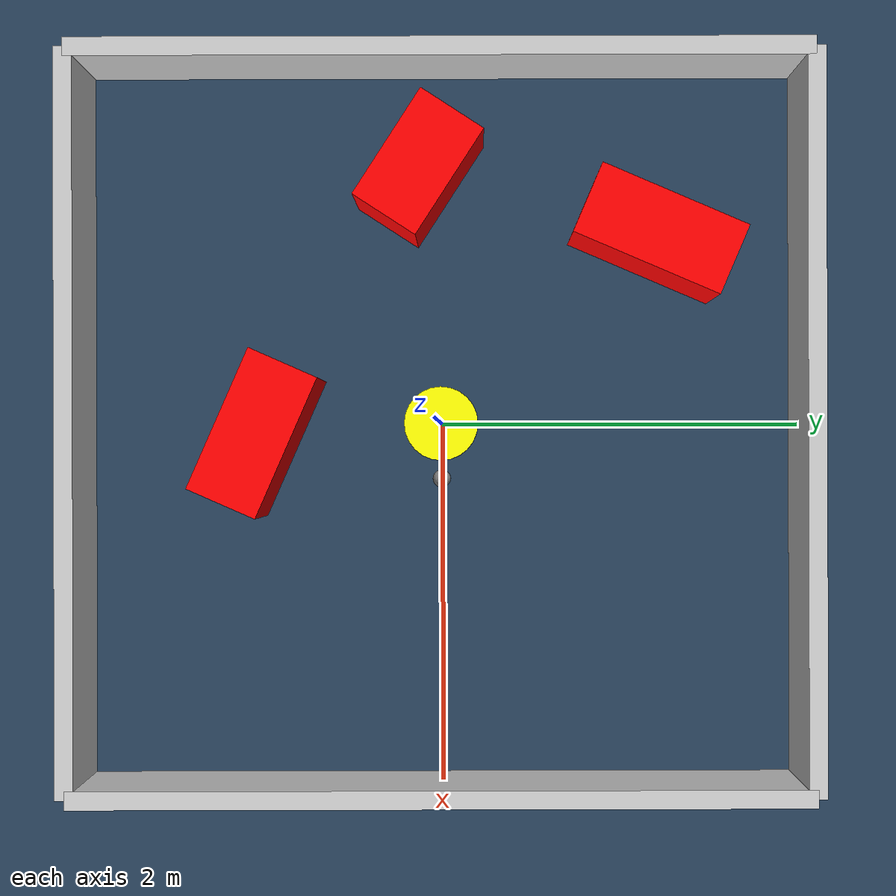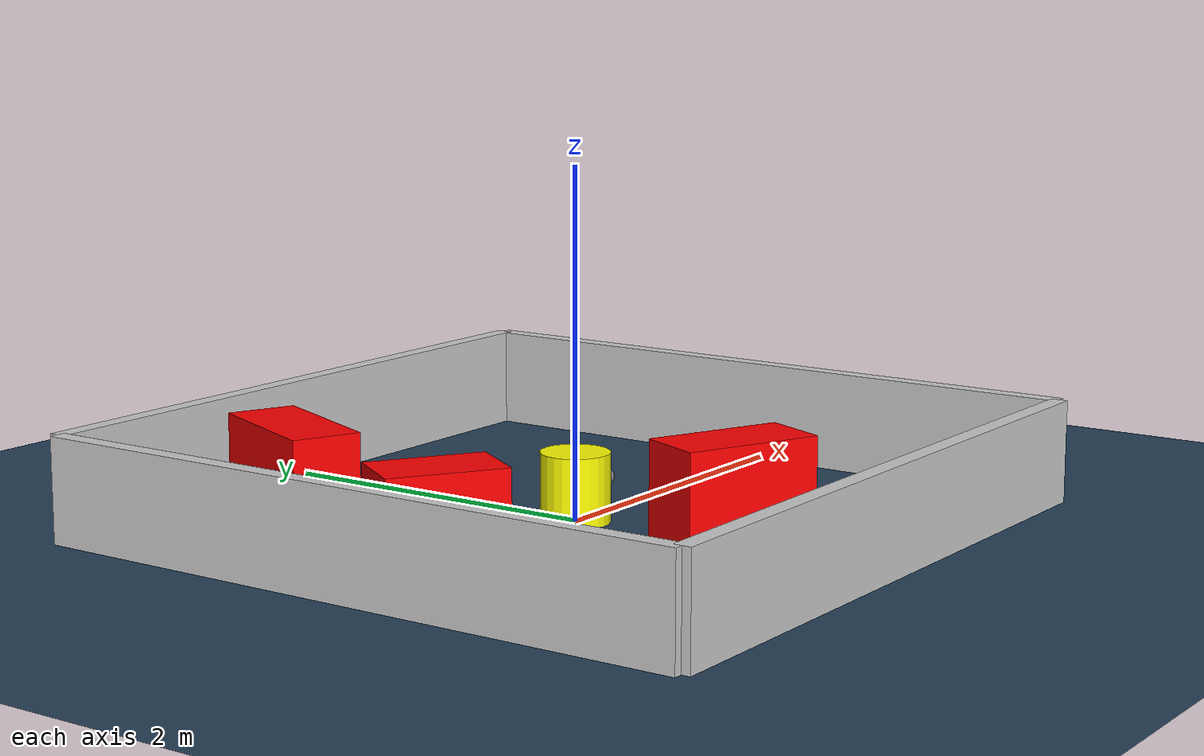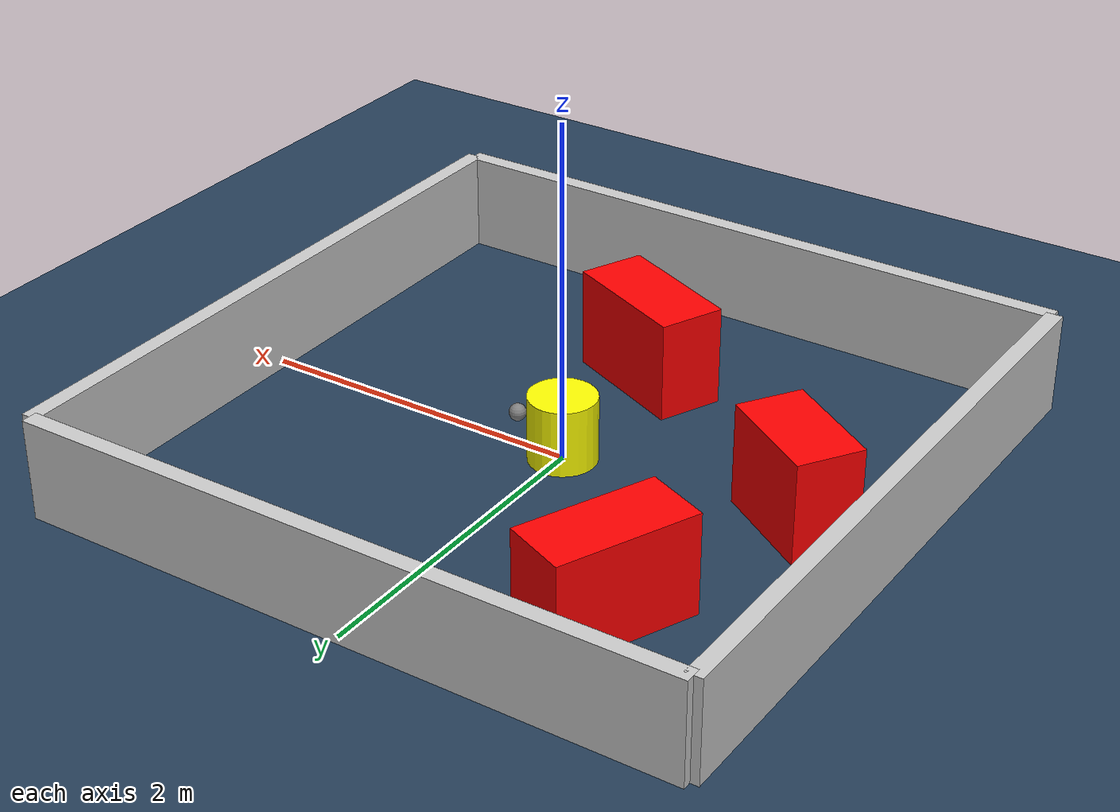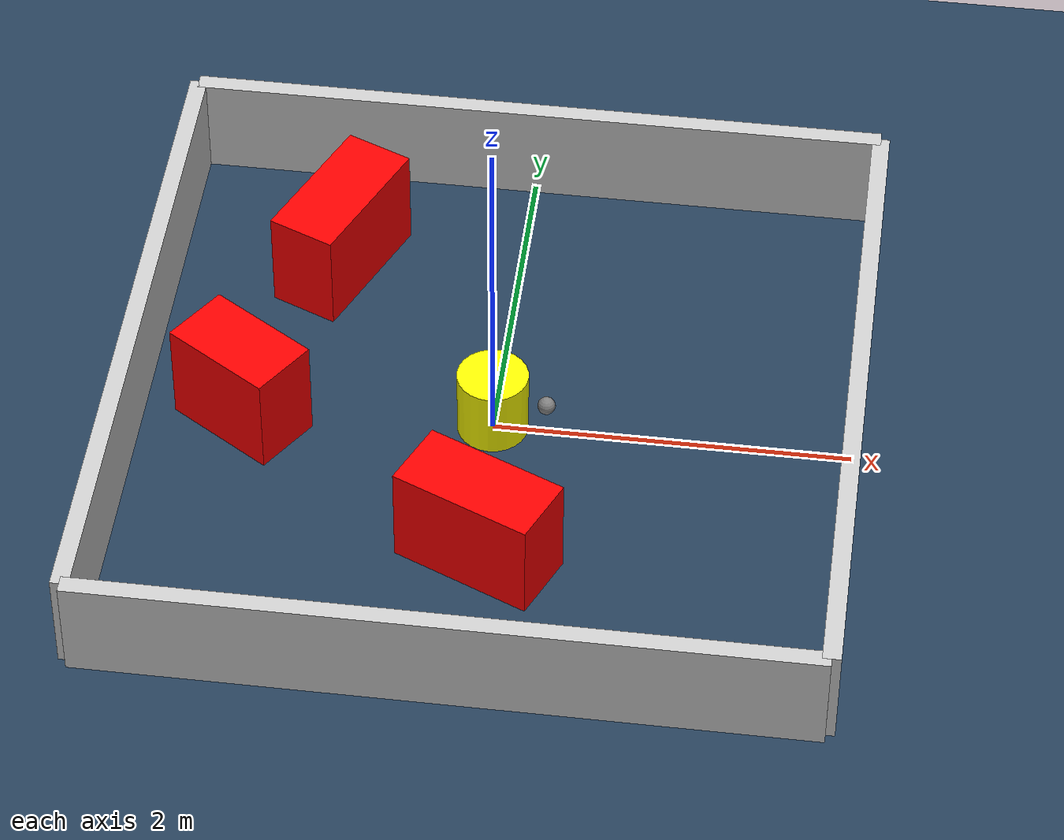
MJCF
<?xml version="1.0" ?>
<mujoco model="generated_environment">
  <option timestep="0.01" integrator="RK4" cone="elliptic"/>
  <default>
    <geom density="1"/>
  </default>
  <asset>
    <texture builtin="gradient" height="3072" rgb1="0.3 0.5 0.7" rgb2="0 0 0" type="skybox" width="512"/>
    <texture builtin="checker" height="300" mark="edge" markrgb="0.8 0.8 0.8" name="groundplane" rgb1="0.2 0.3 0.4" rgb2="0.1 0.2 0.3" type="2d" width="300"/>
    <material name="groundplane" reflectance="0.2" texrepeat="5 5" texture="groundplane" texuniform="true"/>
    <material name="robot" rgba="0.0 1.0 0.0 1"/>
  </asset>
  <worldbody>
    <light dir="0 0 -1" directional="true" pos="0 0 1.5"/>
    <geom condim="4" friction="1.0 0.005 0.001" material="groundplane" name="floor" size="0 0 0.05" type="plane"/>
    <body name="walls">
      <geom name="wall_1" condim="4" pos="-2.0 0.0 0.3" rgba="0.800000011920929 0.800000011920929 0.800000011920929 1.0" size="0.05 2.0 0.3" type="box"/>
      <geom name="wall_2" condim="4" pos="2.0 0.0 0.3" rgba="0.800000011920929 0.800000011920929 0.800000011920929 1.0" size="0.05 2.0 0.3" type="box"/>
      <geom name="wall_3" condim="4" pos="0.0 -2.0 0.3" rgba="0.800000011920929 0.800000011920929 0.800000011920929 1.0" size="2.0 0.05 0.3" type="box"/>
      <geom name="wall_4" condim="4" pos="0.0 2.0 0.3" rgba="0.800000011920929 0.800000011920929 0.800000011920929 1.0" size="2.0 0.05 0.3" type="box"/>
    </body>
    <body name="robot">
      <joint name="joint_x" type="slide" pos="0 0 0" axis="1 0 0"/>
      <joint name="joint_y" type="slide" pos="0 0 0" axis="0 1 0"/>
      <geom name="robot" type="sphere" pos="0.3 0.0 0.2" size="0.05" mass="5." friction="1.0 0.005 0.0001" condim="4" rgba="0.5 0.5 0.5 1.0"/>
      <site name="sensor_ball"/>
    </body>
    <body name="obstacle_movable_1">
      <geom name="obstacle_movable_1" condim="4" pos="0.0 0.0 0.2" euler="0 0 0.0" friction="1.0 0.005 0.001" rgba="1.0 1.0 0.0 1.0" size="0.2 0.2 0.0" type="cylinder" mass="0.1"/>
      <joint type="free"/>
    </body>
    <body name="obstacle_2_static">
      <geom name="obstacle_2_static" condim="4" pos="-1.0296211117124652 1.1757191183886195 0.3" euler="0 0 246.7739952676942" friction="1.0 0.005 0.001" rgba="1 0 0 1" size="0.42445049889902414 0.2 0.3" type="box"/>
    </body>
    <body name="obstacle_3_static">
      <geom name="obstacle_3_static" condim="4" pos="0.05284715726630962 -1.0017912363834829 0.3" euler="0 0 336.1772023284421" friction="1.0 0.005 0.001" rgba="1 0 0 1" size="0.41005187356889267 0.2 0.3" type="box"/>
    </body>
    <body name="obstacle_4_static">
      <geom name="obstacle_4_static" condim="4" pos="-1.3877604190853279 -0.11647414500405628 0.3" euler="0 0 146.98744723971595" friction="1.0 0.005 0.001" rgba="1 0 0 1" size="0.33586151742572573 0.2 0.3" type="box"/>
    </body>
  </worldbody>
  <actuator>
    <motor name="actuator_x" joint="joint_x" gear="1" ctrlrange="-1 1"/>
    <motor name="actuator_y" joint="joint_y" gear="1" ctrlrange="-1 1"/>
  </actuator>
</mujoco>
